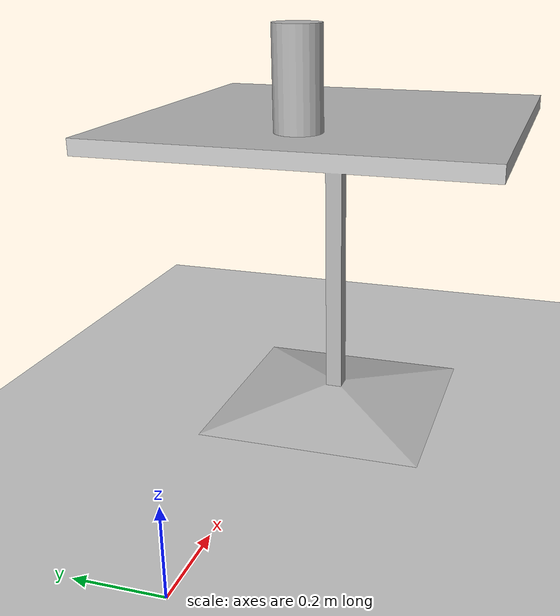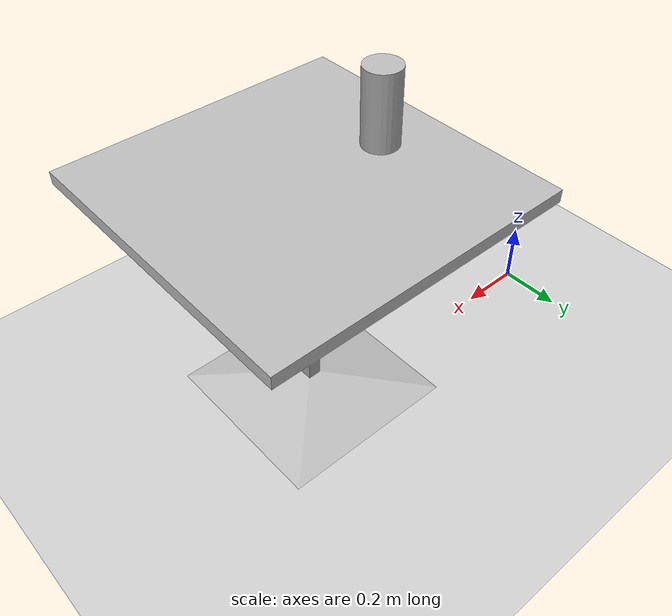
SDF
<sdf version="1.4">
 <world name="default">
  <model name="ground_plane">
   <static>1</static>
   <link name="link">
    <collision name="collision">
     <geometry><plane><normal>0 0 1</normal><size>100 100</size></plane></geometry>
     <surface><friction><ode><mu>100</mu><mu2>50</mu2></ode></friction></surface>
    </collision>
    <visual name="visual">
     <cast_shadows>0</cast_shadows>
     <geometry><plane><normal>0 0 1</normal><size>100 100</size></plane></geometry>
     <material>
      <script><uri>file://media/materials/scripts/gazebo.material</uri><name>Gazebo/Grey</name></script>
     </material>
    </visual>
    <velocity_decay><linear>0</linear><angular>0</angular></velocity_decay>
   </link>
  </model>
  <model name="cafe_table">
   <static>1</static>
   <link name="link">
    <collision name="surface">
     <pose>0 0 0.755 0 -0 0</pose>
     <geometry><box><size>0.913 0.913 0.04</size></box></geometry>
    </collision>
    <collision name="column">
     <pose>0 0 0.37 0 -0 0</pose>
     <geometry><box><size>0.042 0.042 0.74</size></box></geometry>
    </collision>
    <collision name="base">
     <pose>0 0 0.02 0 -0 0</pose>
     <geometry><box><size>0.56 0.56 0.04</size></box></geometry>
    </collision>
    <visual name="visual">
     <geometry><mesh><uri>model://cafe_table/meshes/cafe_table.dae</uri></mesh></geometry>
    </visual>
    <velocity_decay><linear>0</linear><angular>0</angular></velocity_decay>
   </link>
   <pose>0.856289 -0.082614 0 0 -0 0</pose>
  </model>
  <model name="beer">
   <link name="link">
    <pose>0 0 0.115 0 -0 0</pose>
    <inertial>
     <mass>0.39</mass>
     <inertia><ixx>0.00058</ixx><ixy>0</ixy><ixz>0</ixz><iyy>0.00058</iyy><iyz>0</iyz><izz>0.00019</izz></inertia>
    </inertial>
    <collision name="collision">
     <geometry><cylinder><radius>0.055</radius><length>0.23</length></cylinder></geometry>
    </collision>
    <visual name="visual">
     <geometry><cylinder><radius>0.055</radius><length>0.23</length></cylinder></geometry>
     <material>
      <script>
       <uri>model://beer/materials/scripts</uri>
       <uri>model://beer/materials/textures</uri>
       <name>Beer/Diffuse</name>
      </script>
     </material>
    </visual>
    <velocity_decay><linear>0</linear><angular>0</angular></velocity_decay>
   </link>
   <pose>0.595354 -0.074286 0.775004 1.6e-05 6.4e-05 0.000451</pose>
   <static>0</static>
  </model>
 </world>
</sdf>
